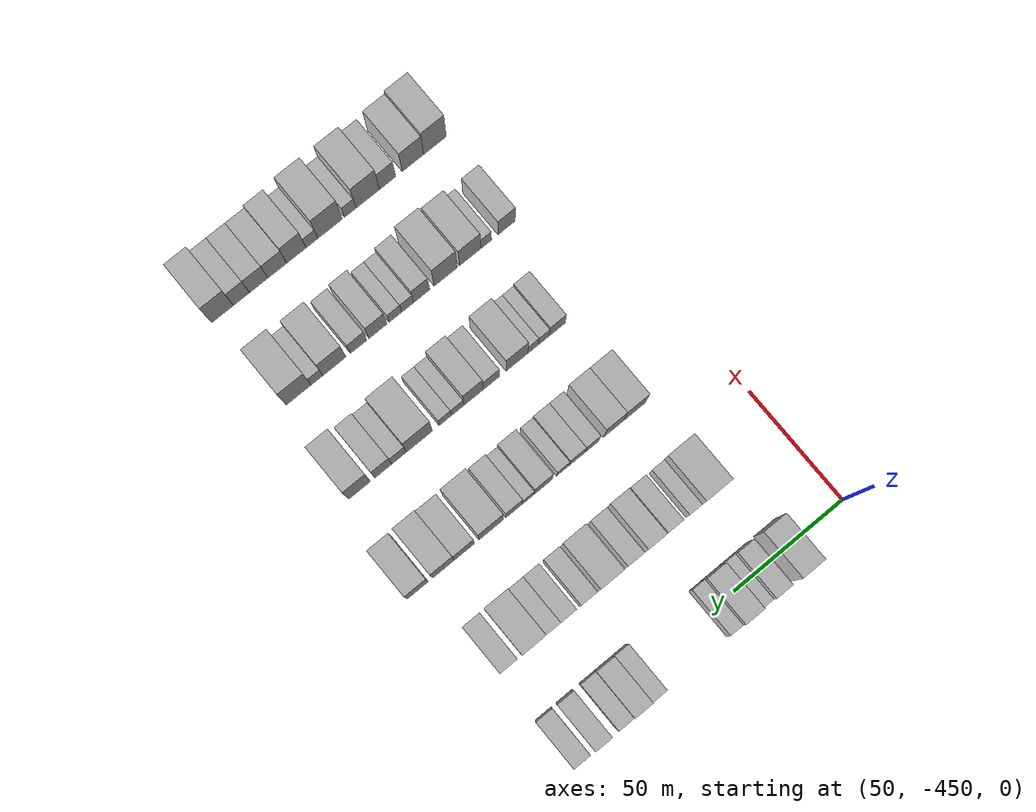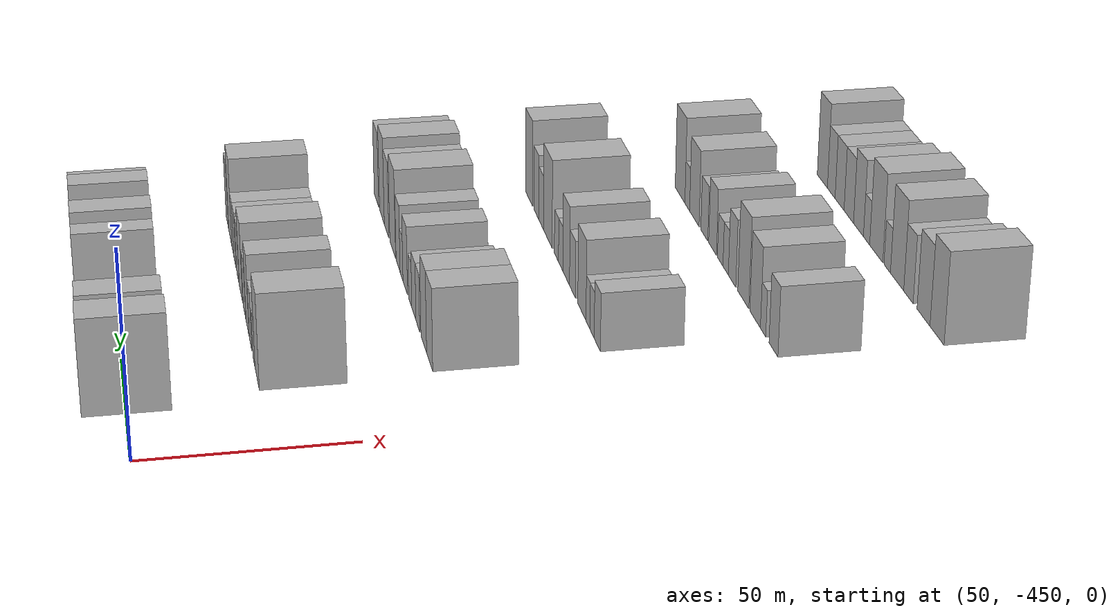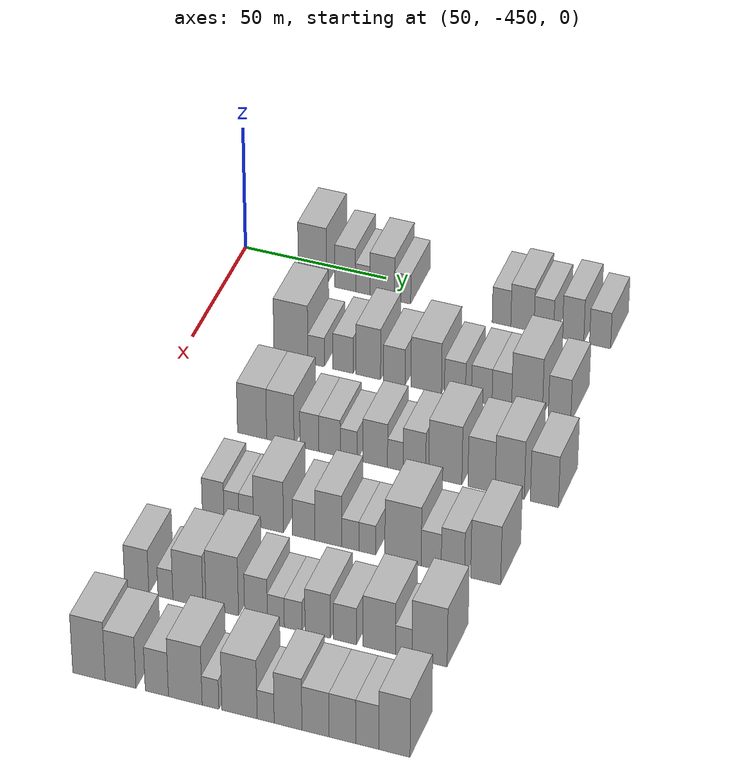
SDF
<sdf version="1.6">
 <world name="default">
  <model name="building_23">
   <static>1</static>
   <pose>50.0000 -422.5944 0 0.000000 0.000000 0.000000</pose>
   <link name="link">
    <pose>0 0 12.00 0 0 0</pose>
    <collision name="collision"><geometry><box><size>20.0000 9.9753 24.0000</size></box></geometry></collision>
    <visual name="visual">
     <cast_shadows>0</cast_shadows>
     <geometry><box><size>20.0000 9.9753 24.0000</size></box></geometry>
     <material>
      <script>
       <uri>model://HANNAS_wall/materials/scripts</uri>
       <uri>model://HANNAS_wall/materials/textures</uri>
       <name>vrc/HANNAS_wall</name>
      </script>
     </material>
    </visual>
   </link>
  </model>
  <model name="building_24">
   <static>1</static>
   <pose>50.0000 -410.9601 0 0.000000 0.000000 0.000000</pose>
   <link name="link">
    <pose>0 0 9.00 0 0 0</pose>
    <collision name="collision"><geometry><box><size>20.0000 7.2933 18.0000</size></box></geometry></collision>
    <visual name="visual">
     <cast_shadows>0</cast_shadows>
     <geometry><box><size>20.0000 7.2933 18.0000</size></box></geometry>
     <material>
      <script>
       <uri>model://HANNAS_wall/materials/scripts</uri>
       <uri>model://HANNAS_wall/materials/textures</uri>
       <name>vrc/HANNAS_wall</name>
      </script>
     </material>
    </visual>
   </link>
  </model>
  <model name="building_25">
   <static>1</static>
   <pose>50.0000 -404.7500 0 0.000000 0.000000 0.000000</pose>
   <link name="link">
    <pose>0 0 6.00 0 0 0</pose>
    <collision name="collision"><geometry><box><size>20.0000 5.1268 12.0000</size></box></geometry></collision>
    <visual name="visual">
     <cast_shadows>0</cast_shadows>
     <geometry><box><size>20.0000 5.1268 12.0000</size></box></geometry>
     <material>
      <script>
       <uri>model://HANNAS_wall/materials/scripts</uri>
       <uri>model://HANNAS_wall/materials/textures</uri>
       <name>vrc/HANNAS_wall</name>
      </script>
     </material>
    </visual>
   </link>
  </model>
  <model name="building_26">
   <static>1</static>
   <pose>50.0000 -397.8932 0 0.000000 0.000000 0.000000</pose>
   <link name="link">
    <pose>0 0 9.00 0 0 0</pose>
    <collision name="collision"><geometry><box><size>20.0000 8.5868 18.0000</size></box></geometry></collision>
    <visual name="visual">
     <cast_shadows>0</cast_shadows>
     <geometry><box><size>20.0000 8.5868 18.0000</size></box></geometry>
     <material>
      <script>
       <uri>model://HANNAS_wall/materials/scripts</uri>
       <uri>model://HANNAS_wall/materials/textures</uri>
       <name>vrc/HANNAS_wall</name>
      </script>
     </material>
    </visual>
   </link>
  </model>
  <model name="building_27">
   <static>1</static>
   <pose>50.0000 -390.7681 0 0.000000 0.000000 0.000000</pose>
   <link name="link">
    <pose>0 0 6.00 0 0 0</pose>
    <collision name="collision"><geometry><box><size>20.0000 5.6634 12.0000</size></box></geometry></collision>
    <visual name="visual">
     <cast_shadows>0</cast_shadows>
     <geometry><box><size>20.0000 5.6634 12.0000</size></box></geometry>
     <material>
      <script>
       <uri>model://HANNAS_wall/materials/scripts</uri>
       <uri>model://HANNAS_wall/materials/textures</uri>
       <name>vrc/HANNAS_wall</name>
      </script>
     </material>
    </visual>
   </link>
  </model>
  <model name="building_28">
   <static>1</static>
   <pose>50.0000 -356.2573 0 0.000000 0.000000 0.000000</pose>
   <link name="link">
    <pose>0 0 7.50 0 0 0</pose>
    <collision name="collision"><geometry><box><size>20.0000 6.4528 15.0000</size></box></geometry></collision>
    <visual name="visual">
     <cast_shadows>0</cast_shadows>
     <geometry><box><size>20.0000 6.4528 15.0000</size></box></geometry>
     <material>
      <script>
       <uri>model://HANNAS_wall/materials/scripts</uri>
       <uri>model://HANNAS_wall/materials/textures</uri>
       <name>vrc/HANNAS_wall</name>
      </script>
     </material>
    </visual>
   </link>
  </model>
  <model name="building_29">
   <static>1</static>
   <pose>50.0000 -349.0196 0 0.000000 0.000000 0.000000</pose>
   <link name="link">
    <pose>0 0 9.00 0 0 0</pose>
    <collision name="collision"><geometry><box><size>20.0000 8.0226 18.0000</size></box></geometry></collision>
    <visual name="visual">
     <cast_shadows>0</cast_shadows>
     <geometry><box><size>20.0000 8.0226 18.0000</size></box></geometry>
     <material>
      <script>
       <uri>model://HANNAS_wall/materials/scripts</uri>
       <uri>model://HANNAS_wall/materials/textures</uri>
       <name>vrc/HANNAS_wall</name>
      </script>
     </material>
    </visual>
   </link>
  </model>
  <model name="building_30">
   <static>1</static>
   <pose>50.0000 -341.6316 0 0.000000 0.000000 0.000000</pose>
   <link name="link">
    <pose>0 0 7.50 0 0 0</pose>
    <collision name="collision"><geometry><box><size>20.0000 6.7535 15.0000</size></box></geometry></collision>
    <visual name="visual">
     <cast_shadows>0</cast_shadows>
     <geometry><box><size>20.0000 6.7535 15.0000</size></box></geometry>
     <material>
      <script>
       <uri>model://HANNAS_wall/materials/scripts</uri>
       <uri>model://HANNAS_wall/materials/textures</uri>
       <name>vrc/HANNAS_wall</name>
      </script>
     </material>
    </visual>
   </link>
  </model>
  <model name="building_31">
   <static>1</static>
   <pose>50.0000 -331.5749 0 0.000000 0.000000 0.000000</pose>
   <link name="link">
    <pose>0 0 9.00 0 0 0</pose>
    <collision name="collision"><geometry><box><size>20.0000 7.3599 18.0000</size></box></geometry></collision>
    <visual name="visual">
     <cast_shadows>0</cast_shadows>
     <geometry><box><size>20.0000 7.3599 18.0000</size></box></geometry>
     <material>
      <script>
       <uri>model://HANNAS_wall/materials/scripts</uri>
       <uri>model://HANNAS_wall/materials/textures</uri>
       <name>vrc/HANNAS_wall</name>
      </script>
     </material>
    </visual>
   </link>
  </model>
  <model name="building_32">
   <static>1</static>
   <pose>50.0000 -322.2869 0 0.000000 0.000000 0.000000</pose>
   <link name="link">
    <pose>0 0 7.50 0 0 0</pose>
    <collision name="collision"><geometry><box><size>20.0000 7.2160 15.0000</size></box></geometry></collision>
    <visual name="visual">
     <cast_shadows>0</cast_shadows>
     <geometry><box><size>20.0000 7.2160 15.0000</size></box></geometry>
     <material>
      <script>
       <uri>model://HANNAS_wall/materials/scripts</uri>
       <uri>model://HANNAS_wall/materials/textures</uri>
       <name>vrc/HANNAS_wall</name>
      </script>
     </material>
    </visual>
   </link>
  </model>
  <model name="building_149">
   <static>1</static>
   <pose>90.0000 -415.4301 0 0.000000 0.000000 0.000000</pose>
   <link name="link">
    <pose>0 0 12.00 0 0 0</pose>
    <collision name="collision"><geometry><box><size>20.0000 11.7925 24.0000</size></box></geometry></collision>
    <visual name="visual">
     <cast_shadows>0</cast_shadows>
     <geometry><box><size>20.0000 11.7925 24.0000</size></box></geometry>
     <material>
      <script>
       <uri>model://HANNAS_wall/materials/scripts</uri>
       <uri>model://HANNAS_wall/materials/textures</uri>
       <name>vrc/HANNAS_wall</name>
      </script>
     </material>
    </visual>
   </link>
  </model>
  <model name="building_150">
   <static>1</static>
   <pose>90.0000 -406.6934 0 0.000000 0.000000 0.000000</pose>
   <link name="link">
    <pose>0 0 6.00 0 0 0</pose>
    <collision name="collision"><geometry><box><size>20.0000 5.6810 12.0000</size></box></geometry></collision>
    <visual name="visual">
     <cast_shadows>0</cast_shadows>
     <geometry><box><size>20.0000 5.6810 12.0000</size></box></geometry>
     <material>
      <script>
       <uri>model://HANNAS_wall/materials/scripts</uri>
       <uri>model://HANNAS_wall/materials/textures</uri>
       <name>vrc/HANNAS_wall</name>
      </script>
     </material>
    </visual>
   </link>
  </model>
  <model name="building_151">
   <static>1</static>
   <pose>90.0000 -397.3552 0 0.000000 0.000000 0.000000</pose>
   <link name="link">
    <pose>0 0 7.50 0 0 0</pose>
    <collision name="collision"><geometry><box><size>20.0000 6.9954 15.0000</size></box></geometry></collision>
    <visual name="visual">
     <cast_shadows>0</cast_shadows>
     <geometry><box><size>20.0000 6.9954 15.0000</size></box></geometry>
     <material>
      <script>
       <uri>model://HANNAS_wall/materials/scripts</uri>
       <uri>model://HANNAS_wall/materials/textures</uri>
       <name>vrc/HANNAS_wall</name>
      </script>
     </material>
    </visual>
   </link>
  </model>
  <model name="building_152">
   <static>1</static>
   <pose>90.0000 -388.6516 0 0.000000 0.000000 0.000000</pose>
   <link name="link">
    <pose>0 0 10.50 0 0 0</pose>
    <collision name="collision"><geometry><box><size>20.0000 8.4116 21.0000</size></box></geometry></collision>
    <visual name="visual">
     <cast_shadows>0</cast_shadows>
     <geometry><box><size>20.0000 8.4116 21.0000</size></box></geometry>
     <material>
      <script>
       <uri>model://HANNAS_wall/materials/scripts</uri>
       <uri>model://HANNAS_wall/materials/textures</uri>
       <name>vrc/HANNAS_wall</name>
      </script>
     </material>
    </visual>
   </link>
  </model>
  <model name="building_153">
   <static>1</static>
   <pose>90.0000 -379.7166 0 0.000000 0.000000 0.000000</pose>
   <link name="link">
    <pose>0 0 7.50 0 0 0</pose>
    <collision name="collision"><geometry><box><size>20.0000 7.4585 15.0000</size></box></geometry></collision>
    <visual name="visual">
     <cast_shadows>0</cast_shadows>
     <geometry><box><size>20.0000 7.4585 15.0000</size></box></geometry>
     <material>
      <script>
       <uri>model://HANNAS_wall/materials/scripts</uri>
       <uri>model://HANNAS_wall/materials/textures</uri>
       <name>vrc/HANNAS_wall</name>
      </script>
     </material>
    </visual>
   </link>
  </model>
  <model name="building_154">
   <static>1</static>
   <pose>90.0000 -368.7658 0 0.000000 0.000000 0.000000</pose>
   <link name="link">
    <pose>0 0 10.50 0 0 0</pose>
    <collision name="collision"><geometry><box><size>20.0000 10.4432 21.0000</size></box></geometry></collision>
    <visual name="visual">
     <cast_shadows>0</cast_shadows>
     <geometry><box><size>20.0000 10.4432 21.0000</size></box></geometry>
     <material>
      <script>
       <uri>model://HANNAS_wall/materials/scripts</uri>
       <uri>model://HANNAS_wall/materials/textures</uri>
       <name>vrc/HANNAS_wall</name>
      </script>
     </material>
    </visual>
   </link>
  </model>
  <model name="building_155">
   <static>1</static>
   <pose>90.0000 -358.9441 0 0.000000 0.000000 0.000000</pose>
   <link name="link">
    <pose>0 0 7.50 0 0 0</pose>
    <collision name="collision"><geometry><box><size>20.0000 7.2001 15.0000</size></box></geometry></collision>
    <visual name="visual">
     <cast_shadows>0</cast_shadows>
     <geometry><box><size>20.0000 7.2001 15.0000</size></box></geometry>
     <material>
      <script>
       <uri>model://HANNAS_wall/materials/scripts</uri>
       <uri>model://HANNAS_wall/materials/textures</uri>
       <name>vrc/HANNAS_wall</name>
      </script>
     </material>
    </visual>
   </link>
  </model>
  <model name="building_156">
   <static>1</static>
   <pose>90.0000 -349.8378 0 0.000000 0.000000 0.000000</pose>
   <link name="link">
    <pose>0 0 7.50 0 0 0</pose>
    <collision name="collision"><geometry><box><size>20.0000 7.0124 15.0000</size></box></geometry></collision>
    <visual name="visual">
     <cast_shadows>0</cast_shadows>
     <geometry><box><size>20.0000 7.0124 15.0000</size></box></geometry>
     <material>
      <script>
       <uri>model://HANNAS_wall/materials/scripts</uri>
       <uri>model://HANNAS_wall/materials/textures</uri>
       <name>vrc/HANNAS_wall</name>
      </script>
     </material>
    </visual>
   </link>
  </model>
  <model name="building_157">
   <static>1</static>
   <pose>90.0000 -343.0130 0 0.000000 0.000000 0.000000</pose>
   <link name="link">
    <pose>0 0 7.50 0 0 0</pose>
    <collision name="collision"><geometry><box><size>20.0000 6.6372 15.0000</size></box></geometry></collision>
    <visual name="visual">
     <cast_shadows>0</cast_shadows>
     <geometry><box><size>20.0000 6.6372 15.0000</size></box></geometry>
     <material>
      <script>
       <uri>model://HANNAS_wall/materials/scripts</uri>
       <uri>model://HANNAS_wall/materials/textures</uri>
       <name>vrc/HANNAS_wall</name>
      </script>
     </material>
    </visual>
   </link>
  </model>
  <model name="building_158">
   <static>1</static>
   <pose>90.0000 -334.4944 0 0.000000 0.000000 0.000000</pose>
   <link name="link">
    <pose>0 0 12.00 0 0 0</pose>
    <collision name="collision"><geometry><box><size>20.0000 10.4001 24.0000</size></box></geometry></collision>
    <visual name="visual">
     <cast_shadows>0</cast_shadows>
     <geometry><box><size>20.0000 10.4001 24.0000</size></box></geometry>
     <material>
      <script>
       <uri>model://HANNAS_wall/materials/scripts</uri>
       <uri>model://HANNAS_wall/materials/textures</uri>
       <name>vrc/HANNAS_wall</name>
      </script>
     </material>
    </visual>
   </link>
  </model>
  <model name="building_159">
   <static>1</static>
   <pose>90.0000 -323.5174 0 0.000000 0.000000 0.000000</pose>
   <link name="link">
    <pose>0 0 9.00 0 0 0</pose>
    <collision name="collision"><geometry><box><size>20.0000 7.5537 18.0000</size></box></geometry></collision>
    <visual name="visual">
     <cast_shadows>0</cast_shadows>
     <geometry><box><size>20.0000 7.5537 18.0000</size></box></geometry>
     <material>
      <script>
       <uri>model://HANNAS_wall/materials/scripts</uri>
       <uri>model://HANNAS_wall/materials/textures</uri>
       <name>vrc/HANNAS_wall</name>
      </script>
     </material>
    </visual>
   </link>
  </model>
  <model name="building_282">
   <static>1</static>
   <pose>130.0000 -413.9097 0 0.000000 0.000000 0.000000</pose>
   <link name="link">
    <pose>0 0 10.50 0 0 0</pose>
    <collision name="collision"><geometry><box><size>20.0000 9.9278 21.0000</size></box></geometry></collision>
    <visual name="visual">
     <cast_shadows>0</cast_shadows>
     <geometry><box><size>20.0000 9.9278 21.0000</size></box></geometry>
     <material>
      <script>
       <uri>model://HANNAS_wall/materials/scripts</uri>
       <uri>model://HANNAS_wall/materials/textures</uri>
       <name>vrc/HANNAS_wall</name>
      </script>
     </material>
    </visual>
   </link>
  </model>
  <model name="building_283">
   <static>1</static>
   <pose>130.0000 -404.2687 0 0.000000 0.000000 0.000000</pose>
   <link name="link">
    <pose>0 0 10.50 0 0 0</pose>
    <collision name="collision"><geometry><box><size>20.0000 9.3541 21.0000</size></box></geometry></collision>
    <visual name="visual">
     <cast_shadows>0</cast_shadows>
     <geometry><box><size>20.0000 9.3541 21.0000</size></box></geometry>
     <material>
      <script>
       <uri>model://HANNAS_wall/materials/scripts</uri>
       <uri>model://HANNAS_wall/materials/textures</uri>
       <name>vrc/HANNAS_wall</name>
      </script>
     </material>
    </visual>
   </link>
  </model>
  <model name="building_284">
   <static>1</static>
   <pose>130.0000 -394.3772 0 0.000000 0.000000 0.000000</pose>
   <link name="link">
    <pose>0 0 7.50 0 0 0</pose>
    <collision name="collision"><geometry><box><size>20.0000 6.4288 15.0000</size></box></geometry></collision>
    <visual name="visual">
     <cast_shadows>0</cast_shadows>
     <geometry><box><size>20.0000 6.4288 15.0000</size></box></geometry>
     <material>
      <script>
       <uri>model://HANNAS_wall/materials/scripts</uri>
       <uri>model://HANNAS_wall/materials/textures</uri>
       <name>vrc/HANNAS_wall</name>
      </script>
     </material>
    </visual>
   </link>
  </model>
  <model name="building_285">
   <static>1</static>
   <pose>130.0000 -387.5535 0 0.000000 0.000000 0.000000</pose>
   <link name="link">
    <pose>0 0 7.50 0 0 0</pose>
    <collision name="collision"><geometry><box><size>20.0000 7.2187 15.0000</size></box></geometry></collision>
    <visual name="visual">
     <cast_shadows>0</cast_shadows>
     <geometry><box><size>20.0000 7.2187 15.0000</size></box></geometry>
     <material>
      <script>
       <uri>model://HANNAS_wall/materials/scripts</uri>
       <uri>model://HANNAS_wall/materials/textures</uri>
       <name>vrc/HANNAS_wall</name>
      </script>
     </material>
    </visual>
   </link>
  </model>
  <model name="building_286">
   <static>1</static>
   <pose>130.0000 -381.0975 0 0.000000 0.000000 0.000000</pose>
   <link name="link">
    <pose>0 0 6.00 0 0 0</pose>
    <collision name="collision"><geometry><box><size>20.0000 5.6932 12.0000</size></box></geometry></collision>
    <visual name="visual">
     <cast_shadows>0</cast_shadows>
     <geometry><box><size>20.0000 5.6932 12.0000</size></box></geometry>
     <material>
      <script>
       <uri>model://HANNAS_wall/materials/scripts</uri>
       <uri>model://HANNAS_wall/materials/textures</uri>
       <name>vrc/HANNAS_wall</name>
      </script>
     </material>
    </visual>
   </link>
  </model>
  <model name="building_287">
   <static>1</static>
   <pose>130.0000 -372.1316 0 0.000000 0.000000 0.000000</pose>
   <link name="link">
    <pose>0 0 9.00 0 0 0</pose>
    <collision name="collision"><geometry><box><size>20.0000 8.2386 18.0000</size></box></geometry></collision>
    <visual name="visual">
     <cast_shadows>0</cast_shadows>
     <geometry><box><size>20.0000 8.2386 18.0000</size></box></geometry>
     <material>
      <script>
       <uri>model://HANNAS_wall/materials/scripts</uri>
       <uri>model://HANNAS_wall/materials/textures</uri>
       <name>vrc/HANNAS_wall</name>
      </script>
     </material>
    </visual>
   </link>
  </model>
  <model name="building_288">
   <static>1</static>
   <pose>130.0000 -365.3599 0 0.000000 0.000000 0.000000</pose>
   <link name="link">
    <pose>0 0 6.00 0 0 0</pose>
    <collision name="collision"><geometry><box><size>20.0000 5.3048 12.0000</size></box></geometry></collision>
    <visual name="visual">
     <cast_shadows>0</cast_shadows>
     <geometry><box><size>20.0000 5.3048 12.0000</size></box></geometry>
     <material>
      <script>
       <uri>model://HANNAS_wall/materials/scripts</uri>
       <uri>model://HANNAS_wall/materials/textures</uri>
       <name>vrc/HANNAS_wall</name>
      </script>
     </material>
    </visual>
   </link>
  </model>
  <model name="building_289">
   <static>1</static>
   <pose>130.0000 -358.9534 0 0.000000 0.000000 0.000000</pose>
   <link name="link">
    <pose>0 0 9.00 0 0 0</pose>
    <collision name="collision"><geometry><box><size>20.0000 7.5081 18.0000</size></box></geometry></collision>
    <visual name="visual">
     <cast_shadows>0</cast_shadows>
     <geometry><box><size>20.0000 7.5081 18.0000</size></box></geometry>
     <material>
      <script>
       <uri>model://HANNAS_wall/materials/scripts</uri>
       <uri>model://HANNAS_wall/materials/textures</uri>
       <name>vrc/HANNAS_wall</name>
      </script>
     </material>
    </visual>
   </link>
  </model>
  <model name="building_290">
   <static>1</static>
   <pose>130.0000 -348.6659 0 0.000000 0.000000 0.000000</pose>
   <link name="link">
    <pose>0 0 12.00 0 0 0</pose>
    <collision name="collision"><geometry><box><size>20.0000 11.0669 24.0000</size></box></geometry></collision>
    <visual name="visual">
     <cast_shadows>0</cast_shadows>
     <geometry><box><size>20.0000 11.0669 24.0000</size></box></geometry>
     <material>
      <script>
       <uri>model://HANNAS_wall/materials/scripts</uri>
       <uri>model://HANNAS_wall/materials/textures</uri>
       <name>vrc/HANNAS_wall</name>
      </script>
     </material>
    </visual>
   </link>
  </model>
  <model name="building_291">
   <static>1</static>
   <pose>130.0000 -336.5953 0 0.000000 0.000000 0.000000</pose>
   <link name="link">
    <pose>0 0 10.50 0 0 0</pose>
    <collision name="collision"><geometry><box><size>20.0000 9.0742 21.0000</size></box></geometry></collision>
    <visual name="visual">
     <cast_shadows>0</cast_shadows>
     <geometry><box><size>20.0000 9.0742 21.0000</size></box></geometry>
     <material>
      <script>
       <uri>model://HANNAS_wall/materials/scripts</uri>
       <uri>model://HANNAS_wall/materials/textures</uri>
       <name>vrc/HANNAS_wall</name>
      </script>
     </material>
    </visual>
   </link>
  </model>
  <model name="building_292">
   <static>1</static>
   <pose>130.0000 -327.2388 0 0.000000 0.000000 0.000000</pose>
   <link name="link">
    <pose>0 0 12.00 0 0 0</pose>
    <collision name="collision"><geometry><box><size>20.0000 9.6388 24.0000</size></box></geometry></collision>
    <visual name="visual">
     <cast_shadows>0</cast_shadows>
     <geometry><box><size>20.0000 9.6388 24.0000</size></box></geometry>
     <material>
      <script>
       <uri>model://HANNAS_wall/materials/scripts</uri>
       <uri>model://HANNAS_wall/materials/textures</uri>
       <name>vrc/HANNAS_wall</name>
      </script>
     </material>
    </visual>
   </link>
  </model>
  <model name="building_293">
   <static>1</static>
   <pose>130.0000 -315.7831 0 0.000000 0.000000 0.000000</pose>
   <link name="link">
    <pose>0 0 10.50 0 0 0</pose>
    <collision name="collision"><geometry><box><size>20.0000 9.2727 21.0000</size></box></geometry></collision>
    <visual name="visual">
     <cast_shadows>0</cast_shadows>
     <geometry><box><size>20.0000 9.2727 21.0000</size></box></geometry>
     <material>
      <script>
       <uri>model://HANNAS_wall/materials/scripts</uri>
       <uri>model://HANNAS_wall/materials/textures</uri>
       <name>vrc/HANNAS_wall</name>
      </script>
     </material>
    </visual>
   </link>
  </model>
  <model name="building_422">
   <static>1</static>
   <pose>170.0000 -411.8597 0 0.000000 0.000000 0.000000</pose>
   <link name="link">
    <pose>0 0 7.50 0 0 0</pose>
    <collision name="collision"><geometry><box><size>20.0000 7.2658 15.0000</size></box></geometry></collision>
    <visual name="visual">
     <cast_shadows>0</cast_shadows>
     <geometry><box><size>20.0000 7.2658 15.0000</size></box></geometry>
     <material>
      <script>
       <uri>model://HANNAS_wall/materials/scripts</uri>
       <uri>model://HANNAS_wall/materials/textures</uri>
       <name>vrc/HANNAS_wall</name>
      </script>
     </material>
    </visual>
   </link>
  </model>
  <model name="building_423">
   <static>1</static>
   <pose>170.0000 -405.7229 0 0.000000 0.000000 0.000000</pose>
   <link name="link">
    <pose>0 0 6.00 0 0 0</pose>
    <collision name="collision"><geometry><box><size>20.0000 5.0079 12.0000</size></box></geometry></collision>
    <visual name="visual">
     <cast_shadows>0</cast_shadows>
     <geometry><box><size>20.0000 5.0079 12.0000</size></box></geometry>
     <material>
      <script>
       <uri>model://HANNAS_wall/materials/scripts</uri>
       <uri>model://HANNAS_wall/materials/textures</uri>
       <name>vrc/HANNAS_wall</name>
      </script>
     </material>
    </visual>
   </link>
  </model>
  <model name="building_424">
   <static>1</static>
   <pose>170.0000 -400.8075 0 0.000000 0.000000 0.000000</pose>
   <link name="link">
    <pose>0 0 6.00 0 0 0</pose>
    <collision name="collision"><geometry><box><size>20.0000 4.8228 12.0000</size></box></geometry></collision>
    <visual name="visual">
     <cast_shadows>0</cast_shadows>
     <geometry><box><size>20.0000 4.8228 12.0000</size></box></geometry>
     <material>
      <script>
       <uri>model://HANNAS_wall/materials/scripts</uri>
       <uri>model://HANNAS_wall/materials/textures</uri>
       <name>vrc/HANNAS_wall</name>
      </script>
     </material>
    </visual>
   </link>
  </model>
  <model name="building_425">
   <static>1</static>
   <pose>170.0000 -393.3749 0 0.000000 0.000000 0.000000</pose>
   <link name="link">
    <pose>0 0 10.50 0 0 0</pose>
    <collision name="collision"><geometry><box><size>20.0000 10.0425 21.0000</size></box></geometry></collision>
    <visual name="visual">
     <cast_shadows>0</cast_shadows>
     <geometry><box><size>20.0000 10.0425 21.0000</size></box></geometry>
     <material>
      <script>
       <uri>model://HANNAS_wall/materials/scripts</uri>
       <uri>model://HANNAS_wall/materials/textures</uri>
       <name>vrc/HANNAS_wall</name>
      </script>
     </material>
    </visual>
   </link>
  </model>
  <model name="building_426">
   <static>1</static>
   <pose>170.0000 -381.6269 0 0.000000 0.000000 0.000000</pose>
   <link name="link">
    <pose>0 0 7.50 0 0 0</pose>
    <collision name="collision"><geometry><box><size>20.0000 7.4536 15.0000</size></box></geometry></collision>
    <visual name="visual">
     <cast_shadows>0</cast_shadows>
     <geometry><box><size>20.0000 7.4536 15.0000</size></box></geometry>
     <material>
      <script>
       <uri>model://HANNAS_wall/materials/scripts</uri>
       <uri>model://HANNAS_wall/materials/textures</uri>
       <name>vrc/HANNAS_wall</name>
      </script>
     </material>
    </visual>
   </link>
  </model>
  <model name="building_427">
   <static>1</static>
   <pose>170.0000 -373.5046 0 0.000000 0.000000 0.000000</pose>
   <link name="link">
    <pose>0 0 10.50 0 0 0</pose>
    <collision name="collision"><geometry><box><size>20.0000 8.7910 21.0000</size></box></geometry></collision>
    <visual name="visual">
     <cast_shadows>0</cast_shadows>
     <geometry><box><size>20.0000 8.7910 21.0000</size></box></geometry>
     <material>
      <script>
       <uri>model://HANNAS_wall/materials/scripts</uri>
       <uri>model://HANNAS_wall/materials/textures</uri>
       <name>vrc/HANNAS_wall</name>
      </script>
     </material>
    </visual>
   </link>
  </model>
  <model name="building_428">
   <static>1</static>
   <pose>170.0000 -366.2763 0 0.000000 0.000000 0.000000</pose>
   <link name="link">
    <pose>0 0 6.00 0 0 0</pose>
    <collision name="collision"><geometry><box><size>20.0000 5.6657 12.0000</size></box></geometry></collision>
    <visual name="visual">
     <cast_shadows>0</cast_shadows>
     <geometry><box><size>20.0000 5.6657 12.0000</size></box></geometry>
     <material>
      <script>
       <uri>model://HANNAS_wall/materials/scripts</uri>
       <uri>model://HANNAS_wall/materials/textures</uri>
       <name>vrc/HANNAS_wall</name>
      </script>
     </material>
    </visual>
   </link>
  </model>
  <model name="building_429">
   <static>1</static>
   <pose>170.0000 -360.6447 0 0.000000 0.000000 0.000000</pose>
   <link name="link">
    <pose>0 0 6.00 0 0 0</pose>
    <collision name="collision"><geometry><box><size>20.0000 5.5974 12.0000</size></box></geometry></collision>
    <visual name="visual">
     <cast_shadows>0</cast_shadows>
     <geometry><box><size>20.0000 5.5974 12.0000</size></box></geometry>
     <material>
      <script>
       <uri>model://HANNAS_wall/materials/scripts</uri>
       <uri>model://HANNAS_wall/materials/textures</uri>
       <name>vrc/HANNAS_wall</name>
      </script>
     </material>
    </visual>
   </link>
  </model>
  <model name="building_430">
   <static>1</static>
   <pose>170.0000 -348.9025 0 0.000000 0.000000 0.000000</pose>
   <link name="link">
    <pose>0 0 12.00 0 0 0</pose>
    <collision name="collision"><geometry><box><size>20.0000 11.8871 24.0000</size></box></geometry></collision>
    <visual name="visual">
     <cast_shadows>0</cast_shadows>
     <geometry><box><size>20.0000 11.8871 24.0000</size></box></geometry>
     <material>
      <script>
       <uri>model://HANNAS_wall/materials/scripts</uri>
       <uri>model://HANNAS_wall/materials/textures</uri>
       <name>vrc/HANNAS_wall</name>
      </script>
     </material>
    </visual>
   </link>
  </model>
  <model name="building_431">
   <static>1</static>
   <pose>170.0000 -339.6867 0 0.000000 0.000000 0.000000</pose>
   <link name="link">
    <pose>0 0 7.50 0 0 0</pose>
    <collision name="collision"><geometry><box><size>20.0000 6.5444 15.0000</size></box></geometry></collision>
    <visual name="visual">
     <cast_shadows>0</cast_shadows>
     <geometry><box><size>20.0000 6.5444 15.0000</size></box></geometry>
     <material>
      <script>
       <uri>model://HANNAS_wall/materials/scripts</uri>
       <uri>model://HANNAS_wall/materials/textures</uri>
       <name>vrc/HANNAS_wall</name>
      </script>
     </material>
    </visual>
   </link>
  </model>
  <model name="building_432">
   <static>1</static>
   <pose>170.0000 -332.6117 0 0.000000 0.000000 0.000000</pose>
   <link name="link">
    <pose>0 0 9.00 0 0 0</pose>
    <collision name="collision"><geometry><box><size>20.0000 7.6057 18.0000</size></box></geometry></collision>
    <visual name="visual">
     <cast_shadows>0</cast_shadows>
     <geometry><box><size>20.0000 7.6057 18.0000</size></box></geometry>
     <material>
      <script>
       <uri>model://HANNAS_wall/materials/scripts</uri>
       <uri>model://HANNAS_wall/materials/textures</uri>
       <name>vrc/HANNAS_wall</name>
      </script>
     </material>
    </visual>
   </link>
  </model>
  <model name="building_433">
   <static>1</static>
   <pose>170.0000 -321.9472 0 0.000000 0.000000 0.000000</pose>
   <link name="link">
    <pose>0 0 12.00 0 0 0</pose>
    <collision name="collision"><geometry><box><size>20.0000 9.7232 24.0000</size></box></geometry></collision>
    <visual name="visual">
     <cast_shadows>0</cast_shadows>
     <geometry><box><size>20.0000 9.7232 24.0000</size></box></geometry>
     <material>
      <script>
       <uri>model://HANNAS_wall/materials/scripts</uri>
       <uri>model://HANNAS_wall/materials/textures</uri>
       <name>vrc/HANNAS_wall</name>
      </script>
     </material>
    </visual>
   </link>
  </model>
  <model name="building_563">
   <static>1</static>
   <pose>210.0000 -421.6121 0 0.000000 0.000000 0.000000</pose>
   <link name="link">
    <pose>0 0 9.00 0 0 0</pose>
    <collision name="collision"><geometry><box><size>20.0000 7.9428 18.0000</size></box></geometry></collision>
    <visual name="visual">
     <cast_shadows>0</cast_shadows>
     <geometry><box><size>20.0000 7.9428 18.0000</size></box></geometry>
     <material>
      <script>
       <uri>model://HANNAS_wall/materials/scripts</uri>
       <uri>model://HANNAS_wall/materials/textures</uri>
       <name>vrc/HANNAS_wall</name>
      </script>
     </material>
    </visual>
   </link>
  </model>
  <model name="building_564">
   <static>1</static>
   <pose>210.0000 -412.1826 0 0.000000 0.000000 0.000000</pose>
   <link name="link">
    <pose>0 0 6.00 0 0 0</pose>
    <collision name="collision"><geometry><box><size>20.0000 4.9161 12.0000</size></box></geometry></collision>
    <visual name="visual">
     <cast_shadows>0</cast_shadows>
     <geometry><box><size>20.0000 4.9161 12.0000</size></box></geometry>
     <material>
      <script>
       <uri>model://HANNAS_wall/materials/scripts</uri>
       <uri>model://HANNAS_wall/materials/textures</uri>
       <name>vrc/HANNAS_wall</name>
      </script>
     </material>
    </visual>
   </link>
  </model>
  <model name="building_565">
   <static>1</static>
   <pose>210.0000 -404.7674 0 0.000000 0.000000 0.000000</pose>
   <link name="link">
    <pose>0 0 10.50 0 0 0</pose>
    <collision name="collision"><geometry><box><size>20.0000 9.9144 21.0000</size></box></geometry></collision>
    <visual name="visual">
     <cast_shadows>0</cast_shadows>
     <geometry><box><size>20.0000 9.9144 21.0000</size></box></geometry>
     <material>
      <script>
       <uri>model://HANNAS_wall/materials/scripts</uri>
       <uri>model://HANNAS_wall/materials/textures</uri>
       <name>vrc/HANNAS_wall</name>
      </script>
     </material>
    </visual>
   </link>
  </model>
  <model name="building_566">
   <static>1</static>
   <pose>210.0000 -393.4894 0 0.000000 0.000000 0.000000</pose>
   <link name="link">
    <pose>0 0 12.00 0 0 0</pose>
    <collision name="collision"><geometry><box><size>20.0000 10.6416 24.0000</size></box></geometry></collision>
    <visual name="visual">
     <cast_shadows>0</cast_shadows>
     <geometry><box><size>20.0000 10.6416 24.0000</size></box></geometry>
     <material>
      <script>
       <uri>model://HANNAS_wall/materials/scripts</uri>
       <uri>model://HANNAS_wall/materials/textures</uri>
       <name>vrc/HANNAS_wall</name>
      </script>
     </material>
    </visual>
   </link>
  </model>
  <model name="building_567">
   <static>1</static>
   <pose>210.0000 -382.4591 0 0.000000 0.000000 0.000000</pose>
   <link name="link">
    <pose>0 0 9.00 0 0 0</pose>
    <collision name="collision"><geometry><box><size>20.0000 7.4192 18.0000</size></box></geometry></collision>
    <visual name="visual">
     <cast_shadows>0</cast_shadows>
     <geometry><box><size>20.0000 7.4192 18.0000</size></box></geometry>
     <material>
      <script>
       <uri>model://HANNAS_wall/materials/scripts</uri>
       <uri>model://HANNAS_wall/materials/textures</uri>
       <name>vrc/HANNAS_wall</name>
      </script>
     </material>
    </visual>
   </link>
  </model>
  <model name="building_568">
   <static>1</static>
   <pose>210.0000 -376.0173 0 0.000000 0.000000 0.000000</pose>
   <link name="link">
    <pose>0 0 6.00 0 0 0</pose>
    <collision name="collision"><geometry><box><size>20.0000 5.4644 12.0000</size></box></geometry></collision>
    <visual name="visual">
     <cast_shadows>0</cast_shadows>
     <geometry><box><size>20.0000 5.4644 12.0000</size></box></geometry>
     <material>
      <script>
       <uri>model://HANNAS_wall/materials/scripts</uri>
       <uri>model://HANNAS_wall/materials/textures</uri>
       <name>vrc/HANNAS_wall</name>
      </script>
     </material>
    </visual>
   </link>
  </model>
  <model name="building_569">
   <static>1</static>
   <pose>210.0000 -370.4178 0 0.000000 0.000000 0.000000</pose>
   <link name="link">
    <pose>0 0 6.00 0 0 0</pose>
    <collision name="collision"><geometry><box><size>20.0000 5.7346 12.0000</size></box></geometry></collision>
    <visual name="visual">
     <cast_shadows>0</cast_shadows>
     <geometry><box><size>20.0000 5.7346 12.0000</size></box></geometry>
     <material>
      <script>
       <uri>model://HANNAS_wall/materials/scripts</uri>
       <uri>model://HANNAS_wall/materials/textures</uri>
       <name>vrc/HANNAS_wall</name>
      </script>
     </material>
    </visual>
   </link>
  </model>
  <model name="building_570">
   <static>1</static>
   <pose>210.0000 -362.4594 0 0.000000 0.000000 0.000000</pose>
   <link name="link">
    <pose>0 0 9.00 0 0 0</pose>
    <collision name="collision"><geometry><box><size>20.0000 8.1821 18.0000</size></box></geometry></collision>
    <visual name="visual">
     <cast_shadows>0</cast_shadows>
     <geometry><box><size>20.0000 8.1821 18.0000</size></box></geometry>
     <material>
      <script>
       <uri>model://HANNAS_wall/materials/scripts</uri>
       <uri>model://HANNAS_wall/materials/textures</uri>
       <name>vrc/HANNAS_wall</name>
      </script>
     </material>
    </visual>
   </link>
  </model>
  <model name="building_571">
   <static>1</static>
   <pose>210.0000 -353.6397 0 0.000000 0.000000 0.000000</pose>
   <link name="link">
    <pose>0 0 7.50 0 0 0</pose>
    <collision name="collision"><geometry><box><size>20.0000 7.4573 15.0000</size></box></geometry></collision>
    <visual name="visual">
     <cast_shadows>0</cast_shadows>
     <geometry><box><size>20.0000 7.4573 15.0000</size></box></geometry>
     <material>
      <script>
       <uri>model://HANNAS_wall/materials/scripts</uri>
       <uri>model://HANNAS_wall/materials/textures</uri>
       <name>vrc/HANNAS_wall</name>
      </script>
     </material>
    </visual>
   </link>
  </model>
  <model name="building_572">
   <static>1</static>
   <pose>210.0000 -342.6761 0 0.000000 0.000000 0.000000</pose>
   <link name="link">
    <pose>0 0 10.50 0 0 0</pose>
    <collision name="collision"><geometry><box><size>20.0000 10.4700 21.0000</size></box></geometry></collision>
    <visual name="visual">
     <cast_shadows>0</cast_shadows>
     <geometry><box><size>20.0000 10.4700 21.0000</size></box></geometry>
     <material>
      <script>
       <uri>model://HANNAS_wall/materials/scripts</uri>
       <uri>model://HANNAS_wall/materials/textures</uri>
       <name>vrc/HANNAS_wall</name>
      </script>
     </material>
    </visual>
   </link>
  </model>
  <model name="building_573">
   <static>1</static>
   <pose>210.0000 -334.7771 0 0.000000 0.000000 0.000000</pose>
   <link name="link">
    <pose>0 0 6.00 0 0 0</pose>
    <collision name="collision"><geometry><box><size>20.0000 5.3280 12.0000</size></box></geometry></collision>
    <visual name="visual">
     <cast_shadows>0</cast_shadows>
     <geometry><box><size>20.0000 5.3280 12.0000</size></box></geometry>
     <material>
      <script>
       <uri>model://HANNAS_wall/materials/scripts</uri>
       <uri>model://HANNAS_wall/materials/textures</uri>
       <name>vrc/HANNAS_wall</name>
      </script>
     </material>
    </visual>
   </link>
  </model>
  <model name="building_574">
   <static>1</static>
   <pose>210.0000 -326.5229 0 0.000000 0.000000 0.000000</pose>
   <link name="link">
    <pose>0 0 12.00 0 0 0</pose>
    <collision name="collision"><geometry><box><size>20.0000 11.1803 24.0000</size></box></geometry></collision>
    <visual name="visual">
     <cast_shadows>0</cast_shadows>
     <geometry><box><size>20.0000 11.1803 24.0000</size></box></geometry>
     <material>
      <script>
       <uri>model://HANNAS_wall/materials/scripts</uri>
       <uri>model://HANNAS_wall/materials/textures</uri>
       <name>vrc/HANNAS_wall</name>
      </script>
     </material>
    </visual>
   </link>
  </model>
  <model name="building_701">
   <static>1</static>
   <pose>250.0000 -421.1279 0 0.000000 0.000000 0.000000</pose>
   <link name="link">
    <pose>0 0 12.00 0 0 0</pose>
    <collision name="collision"><geometry><box><size>20.0000 10.5316 24.0000</size></box></geometry></collision>
    <visual name="visual">
     <cast_shadows>0</cast_shadows>
     <geometry><box><size>20.0000 10.5316 24.0000</size></box></geometry>
     <material>
      <script>
       <uri>model://HANNAS_wall/materials/scripts</uri>
       <uri>model://HANNAS_wall/materials/textures</uri>
       <name>vrc/HANNAS_wall</name>
      </script>
     </material>
    </visual>
   </link>
  </model>
  <model name="building_702">
   <static>1</static>
   <pose>250.0000 -410.8936 0 0.000000 0.000000 0.000000</pose>
   <link name="link">
    <pose>0 0 10.50 0 0 0</pose>
    <collision name="collision"><geometry><box><size>20.0000 9.9370 21.0000</size></box></geometry></collision>
    <visual name="visual">
     <cast_shadows>0</cast_shadows>
     <geometry><box><size>20.0000 9.9370 21.0000</size></box></geometry>
     <material>
      <script>
       <uri>model://HANNAS_wall/materials/scripts</uri>
       <uri>model://HANNAS_wall/materials/textures</uri>
       <name>vrc/HANNAS_wall</name>
      </script>
     </material>
    </visual>
   </link>
  </model>
  <model name="building_703">
   <static>1</static>
   <pose>250.0000 -399.1938 0 0.000000 0.000000 0.000000</pose>
   <link name="link">
    <pose>0 0 9.00 0 0 0</pose>
    <collision name="collision"><geometry><box><size>20.0000 7.4627 18.0000</size></box></geometry></collision>
    <visual name="visual">
     <cast_shadows>0</cast_shadows>
     <geometry><box><size>20.0000 7.4627 18.0000</size></box></geometry>
     <material>
      <script>
       <uri>model://HANNAS_wall/materials/scripts</uri>
       <uri>model://HANNAS_wall/materials/textures</uri>
       <name>vrc/HANNAS_wall</name>
      </script>
     </material>
    </visual>
   </link>
  </model>
  <model name="building_704">
   <static>1</static>
   <pose>250.0000 -390.0488 0 0.000000 0.000000 0.000000</pose>
   <link name="link">
    <pose>0 0 12.00 0 0 0</pose>
    <collision name="collision"><geometry><box><size>20.0000 10.8272 24.0000</size></box></geometry></collision>
    <visual name="visual">
     <cast_shadows>0</cast_shadows>
     <geometry><box><size>20.0000 10.8272 24.0000</size></box></geometry>
     <material>
      <script>
       <uri>model://HANNAS_wall/materials/scripts</uri>
       <uri>model://HANNAS_wall/materials/textures</uri>
       <name>vrc/HANNAS_wall</name>
      </script>
     </material>
    </visual>
   </link>
  </model>
  <model name="building_705">
   <static>1</static>
   <pose>250.0000 -381.9650 0 0.000000 0.000000 0.000000</pose>
   <link name="link">
    <pose>0 0 6.00 0 0 0</pose>
    <collision name="collision"><geometry><box><size>20.0000 5.3404 12.0000</size></box></geometry></collision>
    <visual name="visual">
     <cast_shadows>0</cast_shadows>
     <geometry><box><size>20.0000 5.3404 12.0000</size></box></geometry>
     <material>
      <script>
       <uri>model://HANNAS_wall/materials/scripts</uri>
       <uri>model://HANNAS_wall/materials/textures</uri>
       <name>vrc/HANNAS_wall</name>
      </script>
     </material>
    </visual>
   </link>
  </model>
  <model name="building_706">
   <static>1</static>
   <pose>250.0000 -372.6955 0 0.000000 0.000000 0.000000</pose>
   <link name="link">
    <pose>0 0 12.00 0 0 0</pose>
    <collision name="collision"><geometry><box><size>20.0000 11.1986 24.0000</size></box></geometry></collision>
    <visual name="visual">
     <cast_shadows>0</cast_shadows>
     <geometry><box><size>20.0000 11.1986 24.0000</size></box></geometry>
     <material>
      <script>
       <uri>model://HANNAS_wall/materials/scripts</uri>
       <uri>model://HANNAS_wall/materials/textures</uri>
       <name>vrc/HANNAS_wall</name>
      </script>
     </material>
    </visual>
   </link>
  </model>
  <model name="building_707">
   <static>1</static>
   <pose>250.0000 -364.3867 0 0.000000 0.000000 0.000000</pose>
   <link name="link">
    <pose>0 0 6.00 0 0 0</pose>
    <collision name="collision"><geometry><box><size>20.0000 5.4190 12.0000</size></box></geometry></collision>
    <visual name="visual">
     <cast_shadows>0</cast_shadows>
     <geometry><box><size>20.0000 5.4190 12.0000</size></box></geometry>
     <material>
      <script>
       <uri>model://HANNAS_wall/materials/scripts</uri>
       <uri>model://HANNAS_wall/materials/textures</uri>
       <name>vrc/HANNAS_wall</name>
      </script>
     </material>
    </visual>
   </link>
  </model>
  <model name="building_708">
   <static>1</static>
   <pose>250.0000 -357.2833 0 0.000000 0.000000 0.000000</pose>
   <link name="link">
    <pose>0 0 10.50 0 0 0</pose>
    <collision name="collision"><geometry><box><size>20.0000 8.7877 21.0000</size></box></geometry></collision>
    <visual name="visual">
     <cast_shadows>0</cast_shadows>
     <geometry><box><size>20.0000 8.7877 21.0000</size></box></geometry>
     <material>
      <script>
       <uri>model://HANNAS_wall/materials/scripts</uri>
       <uri>model://HANNAS_wall/materials/textures</uri>
       <name>vrc/HANNAS_wall</name>
      </script>
     </material>
    </visual>
   </link>
  </model>
  <model name="building_709">
   <static>1</static>
   <pose>250.0000 -348.5939 0 0.000000 0.000000 0.000000</pose>
   <link name="link">
    <pose>0 0 9.00 0 0 0</pose>
    <collision name="collision"><geometry><box><size>20.0000 8.5911 18.0000</size></box></geometry></collision>
    <visual name="visual">
     <cast_shadows>0</cast_shadows>
     <geometry><box><size>20.0000 8.5911 18.0000</size></box></geometry>
     <material>
      <script>
       <uri>model://HANNAS_wall/materials/scripts</uri>
       <uri>model://HANNAS_wall/materials/textures</uri>
       <name>vrc/HANNAS_wall</name>
      </script>
     </material>
    </visual>
   </link>
  </model>
  <model name="building_710">
   <static>1</static>
   <pose>250.0000 -340.1311 0 0.000000 0.000000 0.000000</pose>
   <link name="link">
    <pose>0 0 9.00 0 0 0</pose>
    <collision name="collision"><geometry><box><size>20.0000 8.3346 18.0000</size></box></geometry></collision>
    <visual name="visual">
     <cast_shadows>0</cast_shadows>
     <geometry><box><size>20.0000 8.3346 18.0000</size></box></geometry>
     <material>
      <script>
       <uri>model://HANNAS_wall/materials/scripts</uri>
       <uri>model://HANNAS_wall/materials/textures</uri>
       <name>vrc/HANNAS_wall</name>
      </script>
     </material>
    </visual>
   </link>
  </model>
  <model name="building_711">
   <static>1</static>
   <pose>250.0000 -332.3343 0 0.000000 0.000000 0.000000</pose>
   <link name="link">
    <pose>0 0 9.00 0 0 0</pose>
    <collision name="collision"><geometry><box><size>20.0000 7.2591 18.0000</size></box></geometry></collision>
    <visual name="visual">
     <cast_shadows>0</cast_shadows>
     <geometry><box><size>20.0000 7.2591 18.0000</size></box></geometry>
     <material>
      <script>
       <uri>model://HANNAS_wall/materials/scripts</uri>
       <uri>model://HANNAS_wall/materials/textures</uri>
       <name>vrc/HANNAS_wall</name>
      </script>
     </material>
    </visual>
   </link>
  </model>
  <model name="building_712">
   <static>1</static>
   <pose>250.0000 -323.8097 0 0.000000 0.000000 0.000000</pose>
   <link name="link">
    <pose>0 0 12.00 0 0 0</pose>
    <collision name="collision"><geometry><box><size>20.0000 9.7901 24.0000</size></box></geometry></collision>
    <visual name="visual">
     <cast_shadows>0</cast_shadows>
     <geometry><box><size>20.0000 9.7901 24.0000</size></box></geometry>
     <material>
      <script>
       <uri>model://HANNAS_wall/materials/scripts</uri>
       <uri>model://HANNAS_wall/materials/textures</uri>
       <name>vrc/HANNAS_wall</name>
      </script>
     </material>
    </visual>
   </link>
  </model>
 </world>
</sdf>
